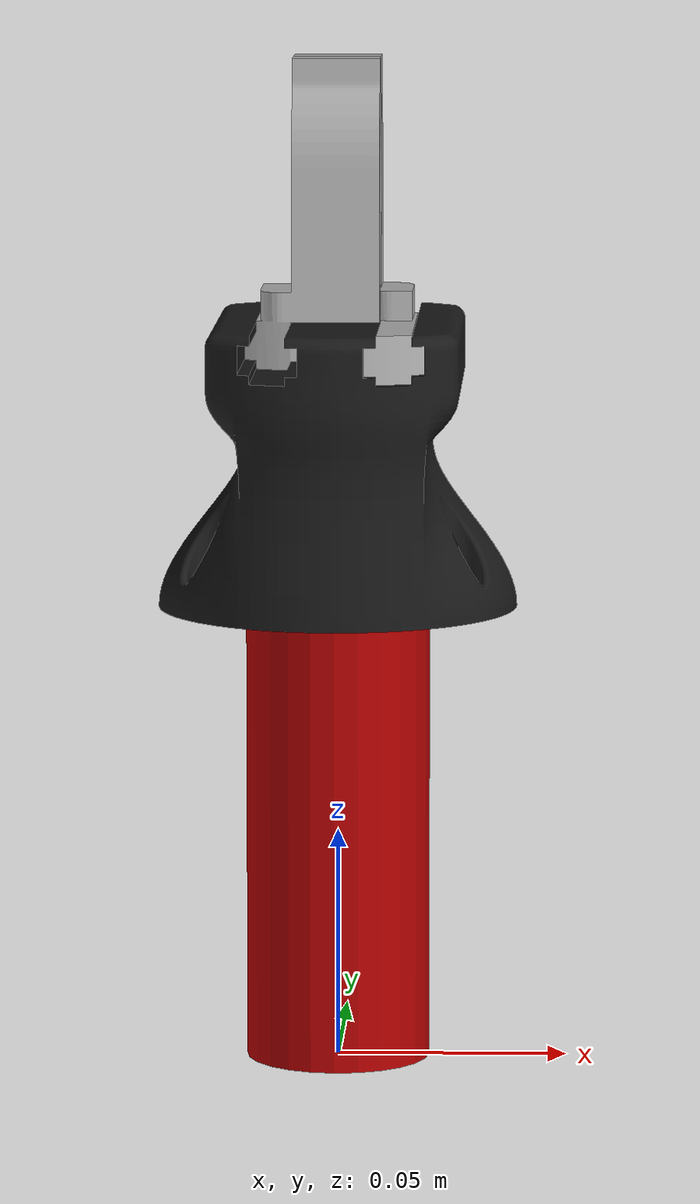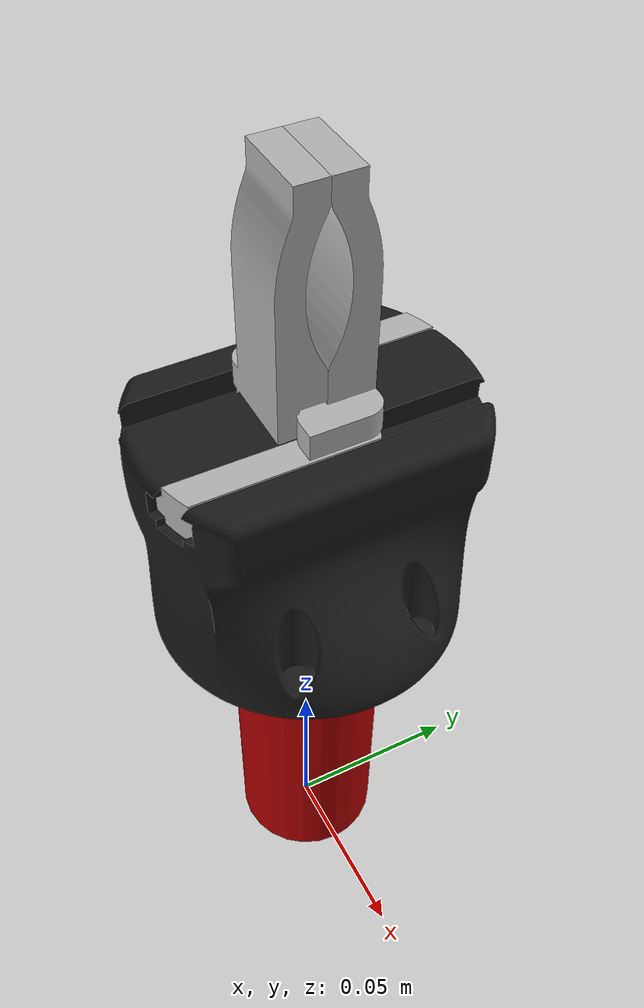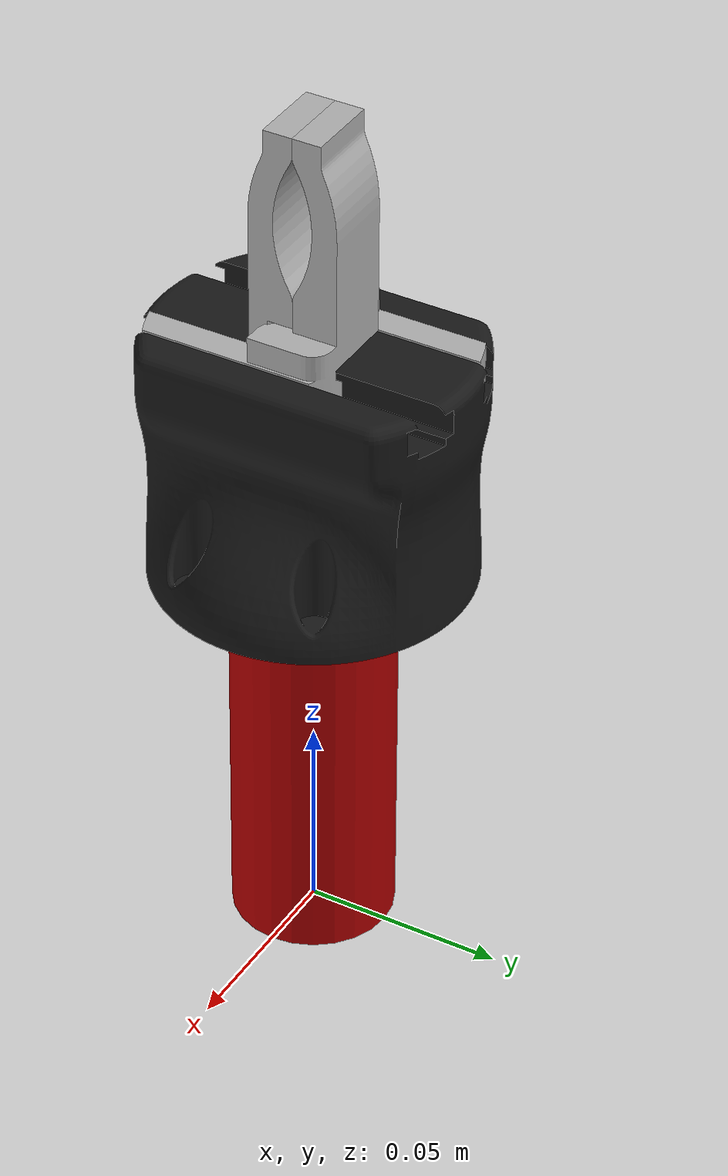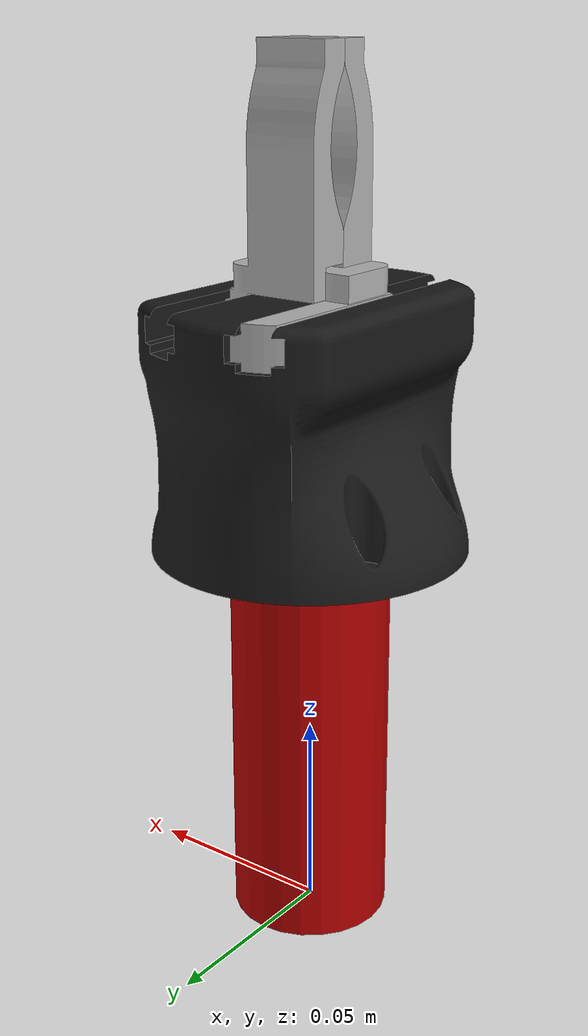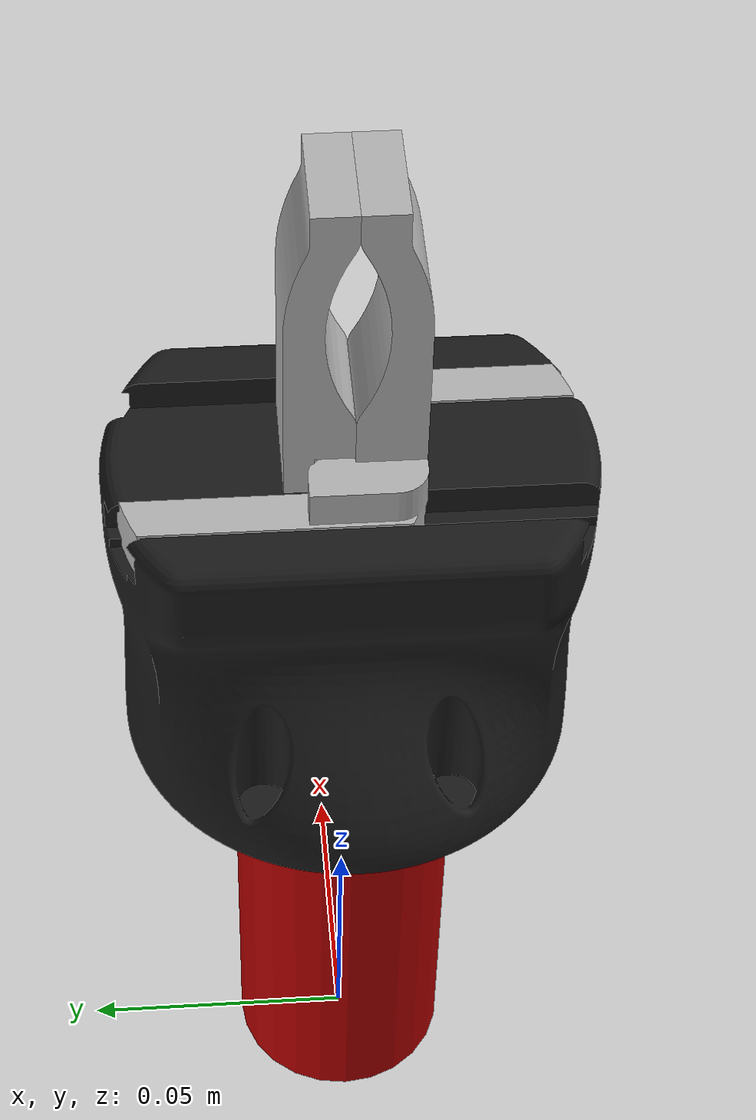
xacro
<?xml version="1.0" ?>
<robot name="za" xmlns:xacro="http://ros.org/wiki/xacro">
  <xacro:include filename="$(find gr60_gripper)/urdf/gr60_gripper_macro.xacro"/>
  <xacro:gr60_gripper_macro prefix="main_"/>

  <material name="main_Red">
    <color rgba="0.7 0.0 0.0 0.99"/>
  </material>

  <link name="world"/>
  <link name="base_link">
    <visual>
      <geometry>
        <cylinder length="0.1" radius="0.02"/>
      </geometry>
      <origin rpy="0 0 0" xyz="0 0 0.05"/>
      <material name="main_Red"/>
    </visual>
  </link>

  <joint name="world-base" type="fixed">
    <parent link="world"/>
    <child link="base_link"/>
  </joint>

  <joint name="base-adapter" type="fixed">
    <parent link="base_link"/>
    <child link="main_gripper_body"/>
    <origin rpy="0 0 0" xyz="0 0 0.1"/>
  </joint>

</robot>

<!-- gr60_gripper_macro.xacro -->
<robot name="gr60_gripper" xmlns:xacro="http://ros.org/wiki/xacro">
  <xacro:macro name="gr60_gripper_macro" params="prefix">

    <material name="${prefix}Black">
      <color rgba="0.1 0.1 0.1 1.0"/>
    </material>
    <material name="${prefix}Silver">
      <color rgba="0.700 0.700 0.700 1.0"/>
    </material>

    <link name="${prefix}gripper_body">
      <inertial>
        <origin xyz="-3.1377899799655244e-05 1.6494540665816296e-06 -0.033330814967884904" rpy="0 0 0"/>
        <mass value="0.7320921088997674"/>
        <inertia ixx="0.000641" iyy="0.000526" izz="0.000498" ixy="-0.0" iyz="-0.0" ixz="1e-06"/>
      </inertial>
      <visual>
        <geometry>
          <mesh filename="package://gr60_gripper/meshes/body.stl" scale="0.001 0.001 0.001"/>
        </geometry>
        <origin rpy="${pi} 0.0 0.0" xyz="0 0 0"/>
        <material name="${prefix}Black">
        </material>
      </visual>
      <collision>
        <geometry>
          <mesh filename="package://gr60_gripper/meshes/body_collision.stl" scale="0.001 0.001 0.001"/>
        </geometry>
        <origin rpy="${pi} 0.0 0.0" xyz="0 0 0"/>
      </collision>
    </link>

    <link name="${prefix}gripper_finger1">
      <visual>
        <geometry>
          <mesh filename="package://gr60_gripper/meshes/finger_1.stl" scale="0.001 0.001 0.001"/>
        </geometry>
        <origin xyz="0.0134 0.06415 0.0" rpy="${pi} 0 0"/>
        <material name="${prefix}Silver">
        </material>
      </visual>
      <collision>
        <origin xyz="0.0134 0.06415 0.0" rpy="${pi} 0 0"/>
        <geometry>
          <mesh filename="package://gr60_gripper/meshes/finger_1.stl" scale="0.001 0.001 0.001"/>
        </geometry>
        <origin rpy="0.0 0.0 0.0" xyz="0.0 0.0 0.0"/>
      </collision>
      <inertial>
        <origin xyz="0.007989848799465349 0.09245151811985064 -0.07644796771340727" rpy="0 0 0"/>
        <mass value="0.039854625810917525"/>
        <inertia ixx="2.1e-05" iyy="1.7e-05" izz="8e-06" ixy="-2e-06" iyz="5e-06" ixz="4e-06"/>
      </inertial>
    </link>

    <link name="${prefix}gripper_finger2">
      <visual>
        <geometry>
          <mesh filename="package://gr60_gripper/meshes/finger_2.stl" scale="0.001 0.001 0.001"/>
        </geometry>
        <origin xyz="-0.0134 0.06415 0.0" rpy="${pi} 0 0"/>
        <material name="${prefix}Silver">
        </material>
      </visual>
      <collision>
        <geometry>
          <mesh filename="package://gr60_gripper/meshes/finger_2.stl" scale="0.001 0.001 0.001"/>
        </geometry>
        <origin xyz="-0.0134 0.06415 0.0" rpy="${pi} 0 0"/>
      </collision>
      <inertial>
        <origin xyz="-0.007989848799473256 0.035848481880149344 -0.07644796771340924" rpy="0 0 0"/>
        <mass value="0.039854625810917525"/>
        <inertia ixx="2.1e-05" iyy="1.7e-05" izz="8e-06" ixy="-2e-06" iyz="-5e-06" ixz="-4e-06"/>
      </inertial>
    </link>

    <joint name="${prefix}gripper_body_finger1" type="prismatic">
      <limit upper="0.00" lower="-0.03" effort="100" velocity="1.0"/>
      <parent link="${prefix}gripper_body"/>
      <child link="${prefix}gripper_finger1"/>
      <axis xyz="-0.0 1.0 -0.0"/>
      <origin xyz="-0.0134 ${-0.06415+0.029} -0.01145" rpy="0 0 0"/>
    </joint>

    <joint name="${prefix}gripper_body_finger2" type="prismatic">
      <limit upper="0.00" lower="-0.3" effort="100" velocity="1.0"/>
      <parent link="${prefix}gripper_body"/>
      <child link="${prefix}gripper_finger2"/>
      <axis xyz="-0.0 -1.0 -0.0"/>
      <mimic joint="${prefix}gripper_body_finger1" multiplier="1.0" offset="0.0" />
      <origin xyz="0.0134 ${-0.06415-0.029} -0.01145" rpy="0 0 0"/>
    </joint>

  </xacro:macro>
</robot>
